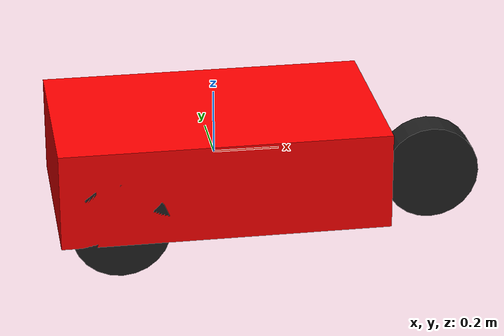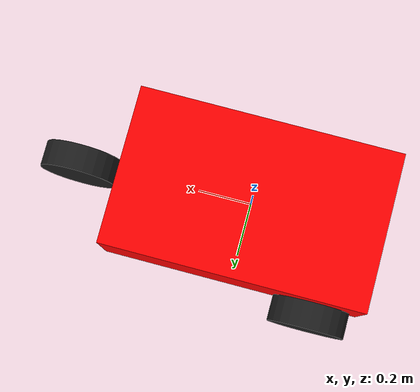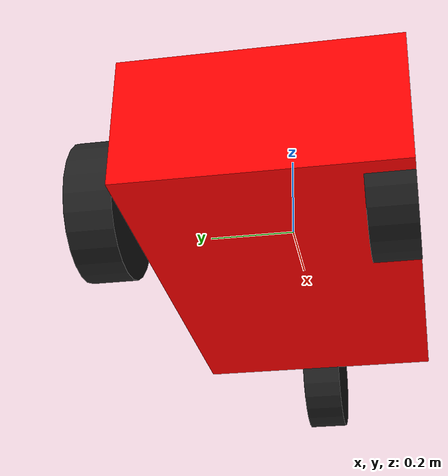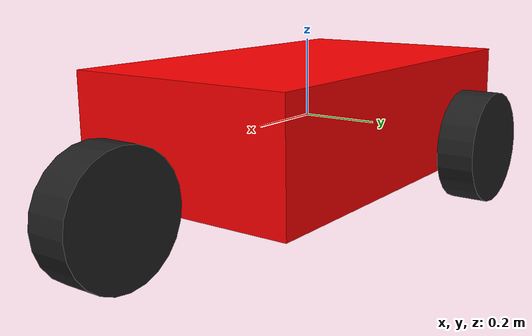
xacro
<?xml version="1.0"?>
<robot name="messi_bot" xmlns:xacro="http://www.ros.org/wiki/xacro">

<!--Body dimentions-->
<xacro:property name="body_link_x_dim" value="1.0"/>
<xacro:property name="body_link_y_dim" value="0.6"/>
<xacro:property name="body_link_z_dim" value="0.3"/>
<!--wheel dimentions -->
<xacro:property name="wheel_link_radius" value="0.15"/>
<xacro:property name="wheel_link_length" value="0.1"/>
<xacro:property name="wheel_link_z_location" value="-0.1"/>

<!--material density xacro property-->
<xacro:property name="body_density" value="2710.0"/>
<!--Pi constant-->
<xacro:property name="pi_constant" value="3.14159265"/>
<!--body mass property-->
<xacro:property name="body_mass" value="${body_density*body_link_x_dim*body_link_y_dim*body_link_z_dim}"/>
<xacro:property name="cylindrical_mass"  value="${body_density*pi_constant*wheel_link_radius*wheel_link_radius*wheel_link_length}"/>
<!--Moments of inertia of wheel with respect to z-->
<xacro:property name="Iz_wheel" value="${0.5*cylindrical_mass*wheel_link_radius*wheel_link_radius}"/>
<!--Moments of inertia of wheel with respect to x-->
<xacro:property name="I_wheel" value="${(1.0/12.0)*cylindrical_mass*(3.0*wheel_link_radius*wheel_link_radius+wheel_link_length*wheel_link_length)}"/>

<!--implement complete inertia into interia section-->
<xacro:macro name="intertia_wheel">
<inertial>
<origin xyz="0.0 0.0 0.0" rpy="0.0 0.0 0.0"/>
    <mass value="0.0"/>
    <inertia ixx="{I_wheel}" ixy="0.0" ixz="0.0" iyy="${I_wheel}" iyz="0" izz="${Iz_wheel}"/>

</inertial>
</xacro:macro>

<!--define sudo link-->
<link name="baseframe_link"/>

    <!-- Base Link -->
    <link name="base_link">
        <visual>
            <geometry>
                <box size="${body_link_x_dim} ${body_link_y_dim} ${body_link_z_dim}"/> <!-- Halved size -->
            </geometry>
            <material name="red">
                <color rgba="1 0 0"/>
            </material>
            <origin xyz="0.0 0.0 0.0" rpy="0.0 0.0 0.0"/>

        </visual>
        <collision>
            <geometry>  <!-- Gripper control plugin specifics here, if needed -->
                <box size="${body_link_x_dim} ${body_link_y_dim} ${body_link_z_dim}"/> <!-- Halved size -->
            </geometry>
            <origin xyz="0.0 0.0 0.0" rpy="0.0 0.0 0.0"/>

        </collision>
        <inertial>
            <mass value="${body_mass}"/>
            <inertia ixx="${(1/12)*body_mass*(body_link_y_dim*body_link_y_dim+body_link_z_dim*body_link_z_dim)}" ixy="0"
            ixz="0" iyy="${(1/12)*body_mass*(body_link_x_dim*body_link_x_dim+body_link_z_dim*body_link_z_dim)}" iyz="0.0"
            izz="${(1/12)*body_mass*(body_link_x_dim*body_link_x_dim+body_link_y_dim*body_link_y_dim)}"/><!-- Adjusted Inertia -->
        </inertial>
    </link>
<!--define sudo joint for gazebo-->
<joint name="baseframe_joint" type="fixed">
<parent link="baseframe_link"/>
<child link="base_link"/>

</joint>

    <!-- Front castor Wheel -->
    <link name="front_castor_wheel_link">
        <visual>
            <geometry>
                <cylinder radius="${wheel_link_radius}" length="${wheel_link_length}"/> <!-- Halved size -->
            </geometry>
            <origin xyz="0.0 0.0 0.0" rpy="${pi_constant} 0.0 0.0"/>

            <material name="black" />
            <color rgba="0 0 0"/>
        </visual>
        <collision>
        <origin rpy="${pi_constant} 0.0 0.0" xyz="0.0 0.0 0.0"/>
            <geometry>
                <cylinder radius="${wheel_link_radius}" length="${wheel_link_length}"/> <!-- Halved size -->
            </geometry>
        </collision>
        <xacro:intertia_wheel/>
    </link>

    <joint name="front_castor_wheel_joint" type="continuous">
<axis xyz="0.0 1 0.0"/>
<limit effort="1000" velocity="1000"/>
<dynamics damping="1.0" friction="1.0"/>

<parent link="base_link"/>
<child link="front_castor_wheel_link"/>
<origin xyz="${body_link_x_dim/2+1.2*wheel_link_radius} 0.0 ${wheel_link_z_location}" rpy="-1.5708 0.0 0.0"/> <!-- Adjusted Position -->
</joint>

<!-- Right Wheel -->
<link name="right_wheel_link">
    <visual>
    <origin xyz="0.0 0.0 0.0" rpy="1.570795 0.0 0.0"/>

        <geometry>
            <cylinder radius="${wheel_link_radius}" length="${wheel_link_length}"/> <!-- Halved size -->
        </geometry>

         <material name="black" />
         <color rgba="0 0 0"/>
    </visual>
    <collision>
    <origin xyz="0.0 0.0 0.0" rpy="1.570795 0.0 0.0"/>
        <geometry>
             <cylinder radius="${wheel_link_radius}" length="${wheel_link_length}"/> <!-- Halved size -->
        </geometry>
    </collision>
    <xacro:intertia_wheel/>
</link>

<joint name="right_wheel_joint" type="continuous">
    <axis xyz="0.0 1.0 0.0"/>
    <limit effort="1000" velocity="1000"/>
    <dynamics damping="1.0" friction="1.0"/>

    <parent link="base_link"/>
    <child link="right_wheel_link"/>
    <origin xyz="${-body_link_x_dim/2+1.2*wheel_link_radius} ${body_link_y_dim/2+wheel_link_length/2} ${wheel_link_z_location}" rpy="0.0 0.0 0.0"/> <!-- Adjusted Position -->
</joint>

<!-- Left Wheel -->
<link name="left_wheel_link">
    <visual>
    <origin xyz="0.0 0.0 0.0" rpy="1.570795 0.0 0.0"/>

        <geometry>
            <cylinder radius="${wheel_link_radius}" length="${wheel_link_length}"/> <!-- Halved size -->
        </geometry>

         <material name="black" />
<color rgba="0 0 0"/>
    </visual>
    <collision>
    <origin xyz="0.0 0.0 0.0" rpy="1.570795 0.0 0.0"/>
        <geometry>
             <cylinder radius="${wheel_link_radius}" length="${wheel_link_length}"/> <!-- Halved size -->
        </geometry>
    </collision>
    <xacro:intertia_wheel/>
</link>

<joint name="left_wheel_joint" type="continuous">
    <axis xyz="0.0 1.0 0.0"/>
    <limit effort="1000" velocity="1000"/>
    <dynamics damping="1.0" friction="1.0"/>

    <parent link="base_link"/>
    <child link="left_wheel_link"/>
    <origin xyz="${-body_link_x_dim/2+1.2*wheel_link_radius} ${-body_link_y_dim/2+wheel_link_length/2} ${wheel_link_z_location}" rpy="0.0 0.0 0.0"/> <!-- Adjusted Position -->
</joint>

<!-- Gripper Link -->
 <link name="left_finger">
        <visual>
            <geometry>
                <box size="0.2 0.0025 0.02"/> <!-- Dimensions of the finger -->
            </geometry>
            <material name="grey"/>
            <color rgba="0 0 0"/>
        </visual>
        <collision>
            <geometry>
                <box size="0.2 0.0025 0.02"/>
            </geometry>
        </collision>
        <inertial>
            <mass value="0.01"/>

           <inertia ixx="1e-6" ixy="0" ixz="0.0" iyy="1e-6" iyz="0.0" izz="1e-6"/>
        </inertial>
    </link>

    <!-- Right Finger of Gripper -->
    <link name="right_finger">
        <visual>
            <geometry>
                <box size="0.2 0.0025 0.02"/> <!-- Dimensions of the finger -->
            </geometry>
            <material name="grey"/>
        </visual>
        <collision>
            <geometry>
                <box size="0.2 0.0025 0.02"/>
            </geometry>
        </collision>
        <inertial>
            <mass value="0.01"/>

          <inertia ixx="1e-6" ixy="0" ixz="0.0" iyy="1e-6" iyz="0.0" izz="1e-6"/>
        </inertial>
    </link>

    <!-- Joint for Left Finger -->
   <joint name="right_finger_joint" type="prismatic">
    <parent link="base_link"/>
    <child link="right_finger"/>
    <origin xyz="0.22 -0.13 0.01" rpy="0.0 0.0 0.0"/>
    <axis xyz="0 1 0"/> <!-- Axis along which the joint extends -->
    <limit lower="0.0" upper="0.05" effort="10" velocity="0.05"/>
</joint>

    <!-- Joint for Right Finger -->
  <joint name="left_finger_joint" type="prismatic">
    <parent link="base_link"/>
    <child link="left_finger"/>
    <origin xyz="0.22 0.13 0.01" rpy="0.0 0.0 0.0"/>
    <axis xyz="0 -1 0"/> <!-- Axis along which the joint extends -->
    <limit lower="0.0" upper="0.05" effort="10" velocity="0.05"/>
</joint>

<!-- Laser Scanner remains unchanged -->
 <link name="laser_scanner">
        <visual>
            <geometry>
                <box size="0.05 0.05 0.05"/>
            </geometry>
        </visual>

        <collision>
            <geometry>
                <box size="0.05 0.05 0.05"/>
            </geometry>
        </collision>

        <inertial>
            <mass value="1e-5"/>
            <inertia ixx="1e-6" ixy="0" ixz="0.0" iyy="1e-6" iyz="0.0" izz="1e-6"/>
        </inertial>
    </link>

    <joint name="laser_scanner_joint" type="fixed">
        <axis xyz="0.0 1 0.0"/>
        <parent link="base_link"/>
        <child link="laser_scanner"/>
        <origin xyz="0.0 0.0 0.08" rpy="0.0 0.0 0.0"/>
    </joint>
<!--Gazebo param-->
     <gazebo reference="laser_scanner">
        <sensor type="ray" name="laser">
            <pose>0 0 0 0 0 0</pose>
            <visualize>true</visualize>
            <update_rate>40</update_rate>
            <ray>
                <scan>
                    <horizontal>
                        <samples>720</samples>
                        <resolution>1</resolution>
                        <min_angle>-3.14</min_angle>
                        <max_angle>3.14</max_angle>
                    </horizontal>
                </scan>
                <range>
                    <min>0.1</min>
                    <max>10</max>
                    <resolution>0.1</resolution>
                </range>
            </ray>
            <plugin name="Lidar" filename="libgazebo_ros_laser.so">
                <topicName>/scan</topicName>
                <frameName>laser_scanner</frameName>
            </plugin>
        </sensor>
    </gazebo>

<!-- Gazebo plugins and materials -->
<gazebo reference="base_link">
<mu1>0.2</mu1>
<mu2>0.2</mu2>

    <material>Gazebo/Orange</material>
</gazebo>

<gazebo reference="front_castor_wheel_link">
<mu1>0.2</mu1>
<mu2>0.2</mu2>
    <material>Gazebo/Black</material>
</gazebo>
<gazebo reference="right_wheel_link">
<mu1>0.2</mu1>
<mu2>0.2</mu2>
    <material>Gazebo/Black</material>
</gazebo>
<gazebo reference="left_wheel_link">
<mu1>0.2</mu1>
<mu2>0.2</mu2>
    <material>Gazebo/Black</material>
</gazebo>
<gazebo reference="gripper">
    <material>Gazebo/Grey</material>
</gazebo>

<!-- Plugins for wheels, laser scanner, and other functionalities -->
<gazebo>
    <plugin name="messi_bot_controller" filename="libgazebo_ros_diff_drive.so">
    <update_rate>100.0</update_rate>
    <robotNamespace></robotNamespace>
        <leftRearJoint>left_wheel_joint</leftRearJoint>
        <rightRearJoint>right_wheel_joint</rightRearJoint>
        <legacyMode>false</legacyMode>
        <robotBaseFrame>base_link</robotBaseFrame>

        <wheelSeparation>${body_link_y_dim+wheel_link_length}</wheelSeparation> <!-- Adjusted for reduced size -->
        <wheelDiameter>${wheel_link_radius*2}</wheelDiameter> <!-- Adjusted for reduced size -->
        <publishWheelJointState>true</publishWheelJointState>
        <torque>1000</torque>
        <commandTopic>cmd_vel</commandTopic>
        <odometryTopic>odom</odometryTopic>
        <odometryFrame>odom</odometryFrame>
        <publishWheelTF>true</publishWheelTF>
        <publishOdom>true</publishOdom>
        <covariance_x>0.0001</covariance_x>
        <covariance_y>0.0001</covariance_y>
        <covariance_z>0.0001</covariance_z>
    </plugin>
</gazebo>
<gazebo>
    <plugin name="joint_state_publisher" filename="libgazebo_ros_joint_state_publisher.so">
        <jointName>front_castor_wheel_joint</jointName>
    </plugin>
</gazebo>
<gazebo>
    <plugin name="gripper_controller" filename="libgazebo_ros_control.so">
        <robotNamespace>/</robotNamespace>
        <controlPeriod>0.001</controlPeriod>
        <robotSimType>gazebo_ros_control/DefaultRobotHWSim</robotSimType>
        <joint name="left_finger_joint">
            <hardwareInterface>EffortJointInterface</hardwareInterface>
        </joint>
        <joint name="right_finger_joint">
            <hardwareInterface>EffortJointInterface</hardwareInterface>
        </joint>
    </plugin>
</gazebo>

</robot>
